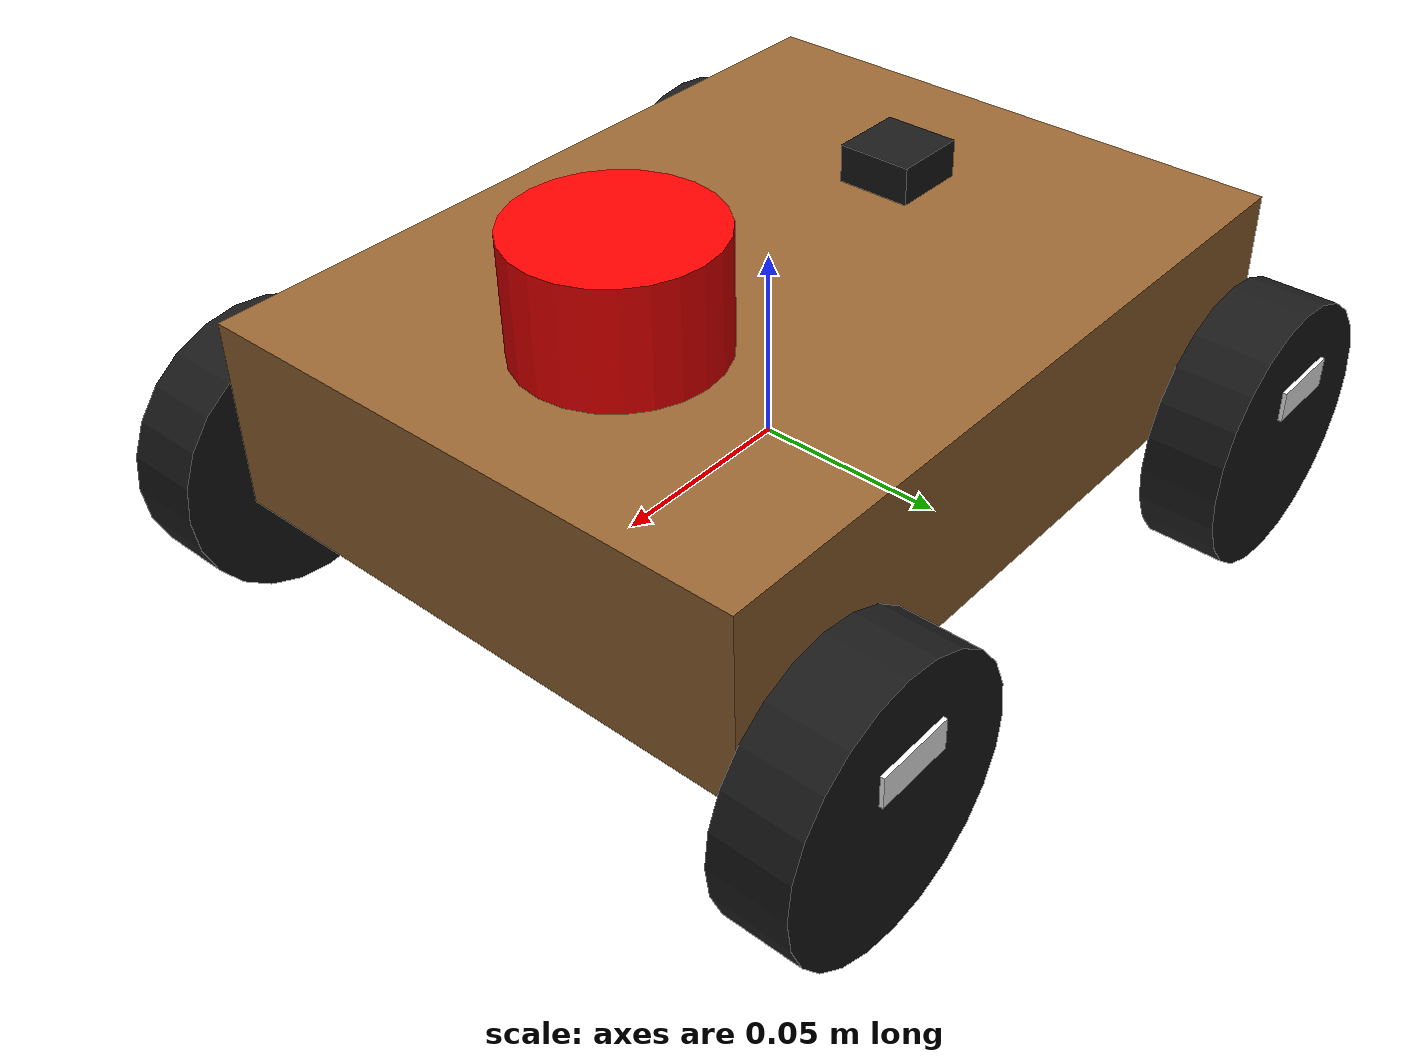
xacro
<?xml version="1.0"?>
<robot name="mecanum_robot" xmlns:xacro="http://www.ros.org/wiki/xacro">

  <!-- Materials -->
  <material name="beige">
    <color rgba="0.96 0.87 0.70 1.0"/>
  </material>

  <material name="brown">
    <color rgba="0.6 0.4 0.2 1.0"/>
  </material>

  <material name="black">
    <color rgba="0.1 0.1 0.1 1.0"/>
  </material>

  <material name="red">
    <color rgba="1.0 0.0 0.0 1.0"/>
  </material>

  <material name="blue">
    <color rgba="0.0 0.0 1.0 1.0"/>
  </material>

  <material name="white">
    <color rgba="1.0 1.0 1.0 1.0"/>
  </material>

  <!-- Base Link (Corps principal) -->
  <link name="base_link">
    <visual>
      <origin xyz="0 0 0.025" rpy="0 0 0"/>
      <geometry>
        <box size="0.20 0.15 0.05"/>
      </geometry>
      <material name="brown"/>
    </visual>
    <collision>
      <origin xyz="0 0 0.025" rpy="0 0 0"/>
      <geometry>
        <box size="0.20 0.15 0.05"/>
      </geometry>
    </collision>
    <inertial>
      <origin xyz="0 0 0.025" rpy="0 0 0"/>
      <mass value="2.5"/>
      <inertia ixx="0.0104" ixy="0.0" ixz="0.0"
               iyy="0.0154" iyz="0.0"
               izz="0.0225"/>
    </inertial>
  </link>

  <!-- Roue avant gauche -->
  <link name="front_left_wheel">
    <visual>
      <origin xyz="0 0 0" rpy="1.5708 0 0"/>
      <geometry>
        <cylinder radius="0.035" length="0.02"/>
      </geometry>
      <material name="black"/>
    </visual>
    <!-- Marque pour identifier la position (FL = Front Left) -->
    <visual name="wheel_mark_fl">
      <origin xyz="0 0.012 0.015" rpy="0 1.5708 0"/>
      <geometry>
        <box size="0.008 0.001 0.020"/>
      </geometry>
      <material name="white"/>
    </visual>
    <collision>
      <origin xyz="0 0 0" rpy="1.5708 0 0"/>
      <geometry>
        <cylinder radius="0.035" length="0.02"/>
      </geometry>
    </collision>
    <inertial>
      <origin xyz="0 0 0" rpy="1.5708 0 0"/>
      <mass value="0.1"/>
      <inertia ixx="0.0001" ixy="0.0" ixz="0.0"
               iyy="0.0001" iyz="0.0"
               izz="0.0001"/>
    </inertial>
  </link>

  <joint name="front_left_wheel_joint" type="continuous">
    <parent link="base_link"/>
    <child link="front_left_wheel"/>
    <origin xyz="0.08 0.09 0.0" rpy="0 0 0"/>
    <axis xyz="0 1 0"/>
  </joint>

  <!-- Roue avant droite -->
  <link name="front_right_wheel">
    <visual>
      <origin xyz="0 0 0" rpy="1.5708 0 0"/>
      <geometry>
        <cylinder radius="0.035" length="0.02"/>
      </geometry>
      <material name="black"/>
    </visual>
    <!-- Marque pour identifier la position (FR = Front Right) -->
    <visual name="wheel_mark_fr">
      <origin xyz="0 -0.012 0.015" rpy="0 1.5708 0"/>
      <geometry>
        <box size="0.008 0.001 0.020"/>
      </geometry>
      <material name="white"/>
    </visual>
    <collision>
      <origin xyz="0 0 0" rpy="1.5708 0 0"/>
      <geometry>
        <cylinder radius="0.035" length="0.02"/>
      </geometry>
    </collision>
    <inertial>
      <origin xyz="0 0 0" rpy="1.5708 0 0"/>
      <mass value="0.1"/>
      <inertia ixx="0.0001" ixy="0.0" ixz="0.0"
               iyy="0.0001" iyz="0.0"
               izz="0.0001"/>
    </inertial>
  </link>

  <joint name="front_right_wheel_joint" type="continuous">
    <parent link="base_link"/>
    <child link="front_right_wheel"/>
    <origin xyz="0.08 -0.09 0.0" rpy="0 0 0"/>
    <axis xyz="0 1 0"/>
  </joint>

  <!-- Roue arrière gauche -->
  <link name="rear_left_wheel">
    <visual>
      <origin xyz="0 0 0" rpy="1.5708 0 0"/>
      <geometry>
        <cylinder radius="0.035" length="0.02"/>
      </geometry>
      <material name="black"/>
    </visual>
    <!-- Marque pour identifier la position (RL = Rear Left) -->
    <visual name="wheel_mark_rl">
      <origin xyz="0 0.012 0.015" rpy="0 1.5708 0"/>
      <geometry>
        <box size="0.008 0.001 0.020"/>
      </geometry>
      <material name="white"/>
    </visual>
    <collision>
      <origin xyz="0 0 0" rpy="1.5708 0 0"/>
      <geometry>
        <cylinder radius="0.035" length="0.02"/>
      </geometry>
    </collision>
    <inertial>
      <origin xyz="0 0 0" rpy="1.5708 0 0"/>
      <mass value="0.1"/>
      <inertia ixx="0.0001" ixy="0.0" ixz="0.0"
               iyy="0.0001" iyz="0.0"
               izz="0.0001"/>
    </inertial>
  </link>

  <joint name="rear_left_wheel_joint" type="continuous">
    <parent link="base_link"/>
    <child link="rear_left_wheel"/>
    <origin xyz="-0.08 0.09 0.0" rpy="0 0 0"/>
    <axis xyz="0 1 0"/>
  </joint>

  <!-- Roue arrière droite -->
  <link name="rear_right_wheel">
    <visual>
      <origin xyz="0 0 0" rpy="1.5708 0 0"/>
      <geometry>
        <cylinder radius="0.035" length="0.02"/>
      </geometry>
      <material name="black"/>
    </visual>
    <!-- Marque pour identifier la position (RR = Rear Right) -->
    <visual name="wheel_mark_rr">
      <origin xyz="0 -0.012 0.015" rpy="0 1.5708 0"/>
      <geometry>
        <box size="0.008 0.001 0.020"/>
      </geometry>
      <material name="white"/>
    </visual>
    <collision>
      <origin xyz="0 0 0" rpy="1.5708 0 0"/>
      <geometry>
        <cylinder radius="0.035" length="0.02"/>
      </geometry>
    </collision>
    <inertial>
      <origin xyz="0 0 0" rpy="1.5708 0 0"/>
      <mass value="0.1"/>
      <inertia ixx="0.0001" ixy="0.0" ixz="0.0"
               iyy="0.0001" iyz="0.0"
               izz="0.0001"/>
    </inertial>
  </link>

  <joint name="rear_right_wheel_joint" type="continuous">
    <parent link="base_link"/>
    <child link="rear_right_wheel"/>
    <origin xyz="-0.08 -0.09 0.0" rpy="0 0 0"/>
    <axis xyz="0 1 0"/>
  </joint>

  <!-- Lidar -->
  <link name="lidar_link">
    <visual>
      <origin xyz="0 0 0" rpy="0 0 0"/>
      <geometry>
        <cylinder radius="0.025" length="0.03"/>
      </geometry>
      <material name="red"/>
    </visual>
    <collision>
      <origin xyz="0 0 0" rpy="0 0 0"/>
      <geometry>
        <cylinder radius="0.025" length="0.03"/>
      </geometry>
    </collision>
    <inertial>
      <origin xyz="0 0 0" rpy="0 0 0"/>
      <mass value="0.05"/>
      <inertia ixx="0.00001" ixy="0.0" ixz="0.0"
               iyy="0.00001" iyz="0.0"
               izz="0.00001"/>
    </inertial>
  </link>

  <joint name="lidar_joint" type="fixed">
    <parent link="base_link"/>
    <child link="lidar_link"/>
    <origin xyz="0.05 0 0.065" rpy="0 0 0"/>
  </joint>

  <!-- IMU -->
  <link name="imu_link">
    <visual>
      <origin xyz="0 0 0" rpy="0 0 0"/>
      <geometry>
        <box size="0.02 0.02 0.01"/>
      </geometry>
      <material name="black"/>
    </visual>
    <collision>
      <origin xyz="0 0 0" rpy="0 0 0"/>
      <geometry>
        <box size="0.02 0.02 0.01"/>
      </geometry>
    </collision>
    <inertial>
      <origin xyz="0 0 0" rpy="0 0 0"/>
      <mass value="0.01"/>
      <inertia ixx="0.000001" ixy="0.0" ixz="0.0"
               iyy="0.000001" iyz="0.0"
               izz="0.000001"/>
    </inertial>
  </link>

  <joint name="imu_joint" type="fixed">
    <parent link="base_link"/>
    <child link="imu_link"/>
    <origin xyz="-0.05 0 0.055" rpy="0 0 0"/>
  </joint>

  <!-- Gazebo plugins -->
  <gazebo>
    <plugin name="gz::sim::systems::DiffDrive" filename="gz-sim-diff-drive-system">
      <left_joint>front_left_wheel_joint</left_joint>
      <right_joint>front_right_wheel_joint</right_joint>
      <wheel_separation>0.18</wheel_separation>
      <wheel_radius>0.035</wheel_radius>
      <odom_publish_frequency>1</odom_publish_frequency>
      <topic>cmd_vel</topic>
    </plugin>
  </gazebo>

  <!-- Gazebo Lidar Plugin -->
  <gazebo reference="lidar_link">
    <sensor name="lidar" type="gpu_lidar">
      <topic>scan</topic>
      <update_rate>40</update_rate>
      <lidar>
        <scan>
          <horizontal>
            <samples>720</samples>
            <resolution>1</resolution>
            <min_angle>-1.570796</min_angle>
            <max_angle>1.570796</max_angle>
          </horizontal>
        </scan>
        <range>
          <min>0.10</min>
          <max>30.0</max>
          <resolution>0.01</resolution>
        </range>
      </lidar>
      <always_on>1</always_on>
      <visualize>true</visualize>
    </sensor>
  </gazebo>

  <!-- Gazebo IMU Plugin -->
  <gazebo reference="imu_link">
    <sensor name="imu_sensor" type="imu">
      <topic>imu</topic>
      <update_rate>100</update_rate>
      <always_on>1</always_on>
    </sensor>
  </gazebo>

</robot>
